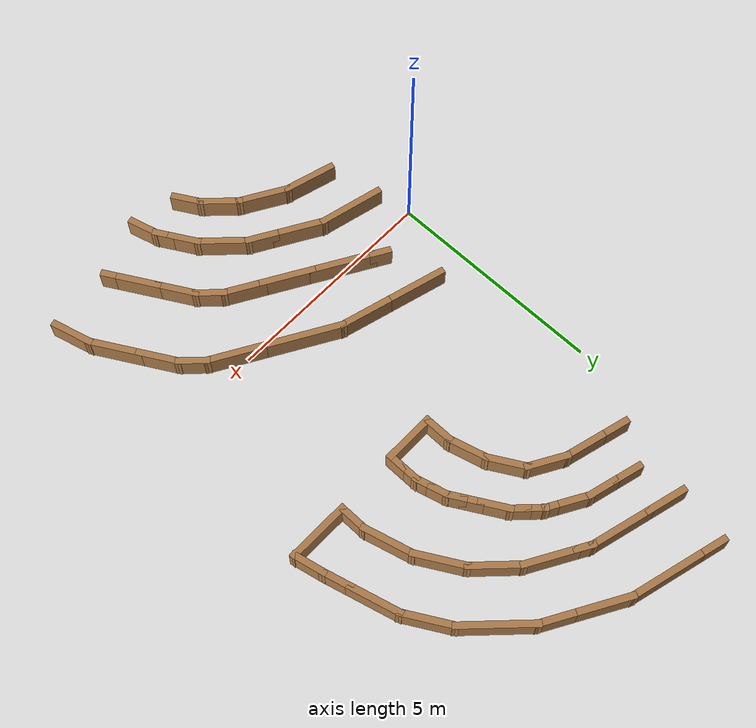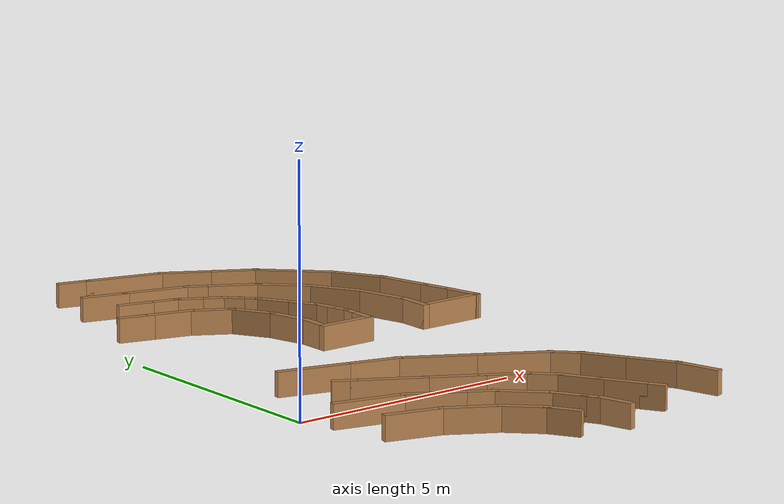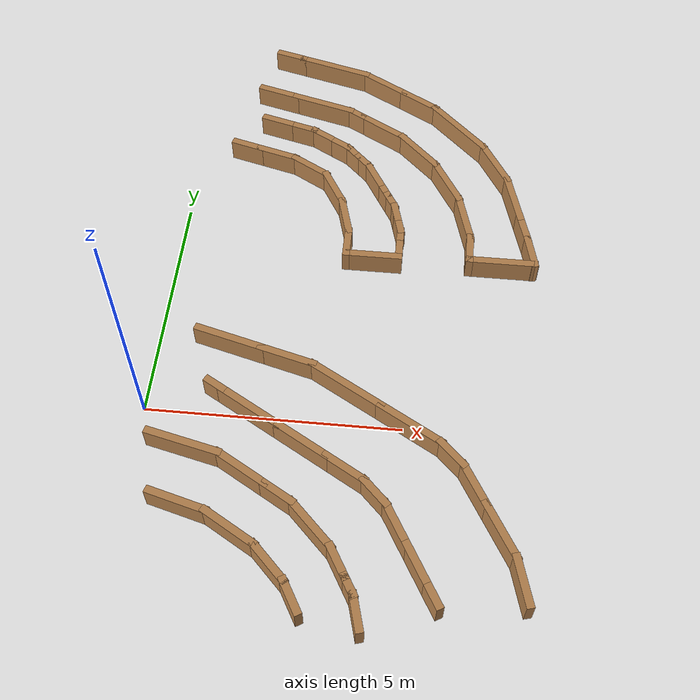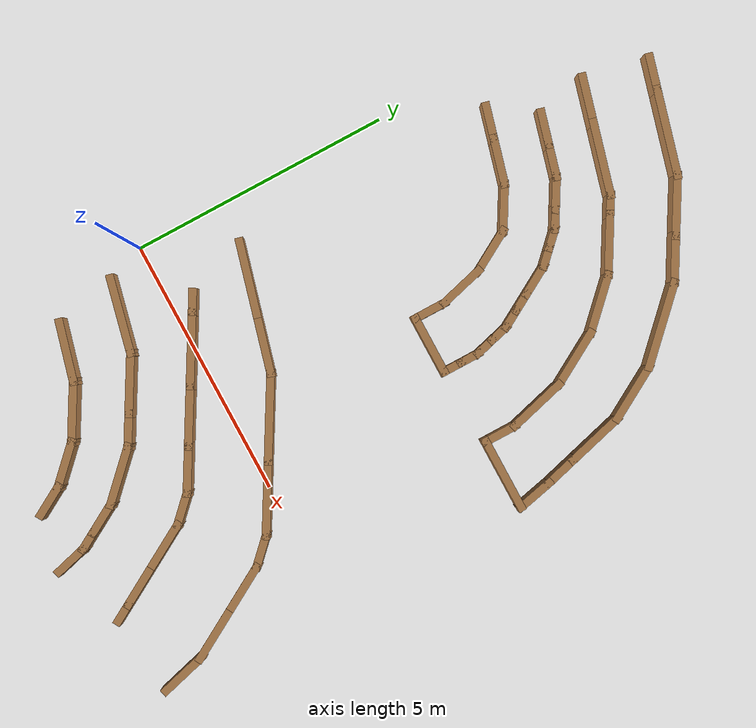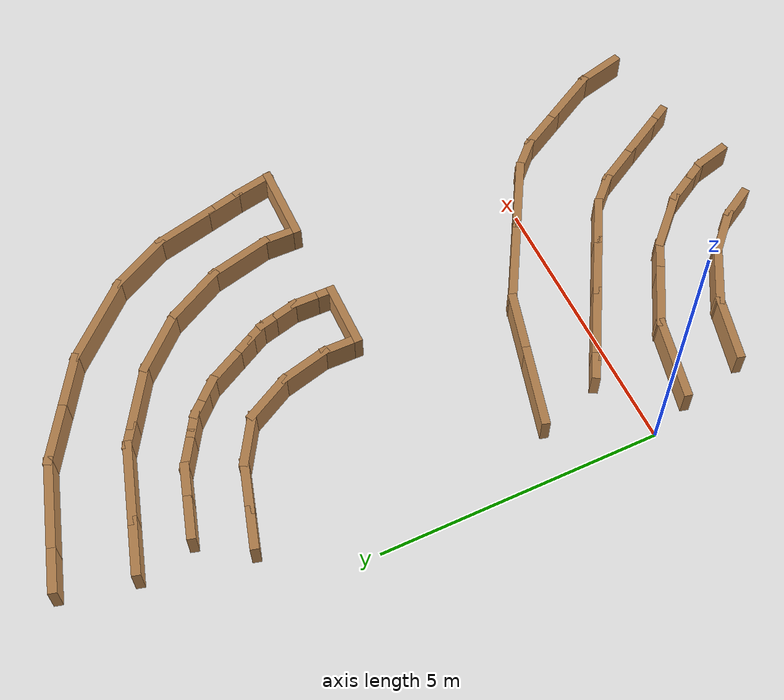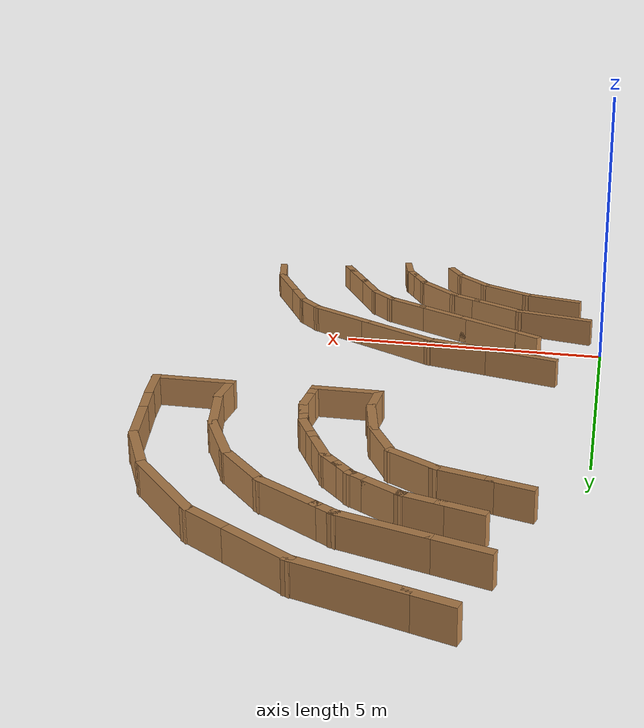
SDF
<sdf version="1.6">
 <model name="maze-S">
  <pose>0.044345 -0.028084 0 0 -0 0</pose>
  <link name="Wall_167">
   <collision name="Wall_167_Collision">
    <geometry><box><size>1.5 0.15 0.5</size></box></geometry>
    <pose>0 0 0.25 0 -0 0</pose>
   </collision>
   <visual name="Wall_167_Visual">
    <pose>0 0 0.25 0 -0 0</pose>
    <geometry><box><size>1.5 0.15 0.5</size></box></geometry>
    <material>
     <script><uri>file://media/materials/scripts/gazebo.material</uri><name>Gazebo/Wood</name></script>
     <ambient>1 1 1 1</ambient>
    </material>
    <meta><layer>0</layer></meta>
   </visual>
   <pose>6.75824 3.91414 0 0 -0 3.14159</pose>
  </link>
  <link name="Wall_168">
   <collision name="Wall_168_Collision">
    <geometry><box><size>0.75 0.15 0.5</size></box></geometry>
    <pose>0 0 0.25 0 -0 0</pose>
   </collision>
   <visual name="Wall_168_Visual">
    <pose>0 0 0.25 0 -0 0</pose>
    <geometry><box><size>0.75 0.15 0.5</size></box></geometry>
    <material>
     <script><uri>file://media/materials/scripts/gazebo.material</uri><name>Gazebo/Wood</name></script>
     <ambient>1 1 1 1</ambient>
    </material>
    <meta><layer>0</layer></meta>
   </visual>
   <pose>6.08324 4.21414 0 0 -0 1.5708</pose>
  </link>
  <link name="Wall_169">
   <collision name="Wall_169_Collision">
    <geometry><box><size>1.25 0.15 0.5</size></box></geometry>
    <pose>0 0 0.25 0 -0 0</pose>
   </collision>
   <visual name="Wall_169_Visual">
    <pose>0 0 0.25 0 -0 0</pose>
    <geometry><box><size>1.25 0.15 0.5</size></box></geometry>
    <material>
     <script><uri>file://media/materials/scripts/gazebo.material</uri><name>Gazebo/Wood</name></script>
     <ambient>1 1 1 1</ambient>
    </material>
    <meta><layer>0</layer></meta>
   </visual>
   <pose>5.94089 5.0454 0 0 -0 1.8326</pose>
  </link>
  <link name="Wall_170">
   <collision name="Wall_170_Collision">
    <geometry><box><size>1.25 0.15 0.5</size></box></geometry>
    <pose>0 0 0.25 0 -0 0</pose>
   </collision>
   <visual name="Wall_170_Visual">
    <pose>0 0 0.25 0 -0 0</pose>
    <geometry><box><size>1.25 0.15 0.5</size></box></geometry>
    <material>
     <script><uri>file://media/materials/scripts/gazebo.material</uri><name>Gazebo/Wood</name></script>
     <ambient>1 1 1 1</ambient>
    </material>
    <meta><layer>0</layer></meta>
   </visual>
   <pose>5.52354 6.05297 0 0 -0 2.0944</pose>
  </link>
  <link name="Wall_171">
   <collision name="Wall_171_Collision">
    <geometry><box><size>1.25 0.15 0.5</size></box></geometry>
    <pose>0 0 0.25 0 -0 0</pose>
   </collision>
   <visual name="Wall_171_Visual">
    <pose>0 0 0.25 0 -0 0</pose>
    <geometry><box><size>1.25 0.15 0.5</size></box></geometry>
    <material>
     <script><uri>file://media/materials/scripts/gazebo.material</uri><name>Gazebo/Wood</name></script>
     <ambient>1 1 1 1</ambient>
    </material>
    <meta><layer>0</layer></meta>
   </visual>
   <pose>4.85963 6.91819 0 0 -0 2.35619</pose>
  </link>
  <link name="Wall_172">
   <collision name="Wall_172_Collision">
    <geometry><box><size>1.25 0.15 0.5</size></box></geometry>
    <pose>0 0 0.25 0 -0 0</pose>
   </collision>
   <visual name="Wall_172_Visual">
    <pose>0 0 0.25 0 -0 0</pose>
    <geometry><box><size>1.25 0.15 0.5</size></box></geometry>
    <material>
     <script><uri>file://media/materials/scripts/gazebo.material</uri><name>Gazebo/Wood</name></script>
     <ambient>1 1 1 1</ambient>
    </material>
    <meta><layer>0</layer></meta>
   </visual>
   <pose>3.99441 7.5821 0 0 -0 2.61799</pose>
  </link>
  <link name="Wall_173">
   <collision name="Wall_173_Collision">
    <geometry><box><size>0.5 0.15 0.5</size></box></geometry>
    <pose>0 0 0.25 0 -0 0</pose>
   </collision>
   <visual name="Wall_173_Visual">
    <pose>0 0 0.25 0 -0 0</pose>
    <geometry><box><size>0.5 0.15 0.5</size></box></geometry>
    <material>
     <script><uri>file://media/materials/scripts/gazebo.material</uri><name>Gazebo/Wood</name></script>
     <ambient>1 1 1 1</ambient>
    </material>
    <meta><layer>0</layer></meta>
   </visual>
   <pose>3.36654 7.9446 0 0 -0 2.61799</pose>
  </link>
  <link name="Wall_174">
   <collision name="Wall_174_Collision">
    <geometry><box><size>1.5 0.15 0.5</size></box></geometry>
    <pose>0 0 0.25 0 -0 0</pose>
   </collision>
   <visual name="Wall_174_Visual">
    <pose>0 0 0.25 0 -0 0</pose>
    <geometry><box><size>1.5 0.15 0.5</size></box></geometry>
    <material>
     <script><uri>file://media/materials/scripts/gazebo.material</uri><name>Gazebo/Wood</name></script>
     <ambient>1 1 1 1</ambient>
    </material>
    <meta><layer>0</layer></meta>
   </visual>
   <pose>2.56299 8.2068 0 0 -0 2.87979</pose>
  </link>
  <link name="Wall_175">
   <collision name="Wall_175_Collision">
    <geometry><box><size>1 0.15 0.5</size></box></geometry>
    <pose>0 0 0.25 0 -0 0</pose>
   </collision>
   <visual name="Wall_175_Visual">
    <pose>0 0 0.25 0 -0 0</pose>
    <geometry><box><size>1 0.15 0.5</size></box></geometry>
    <material>
     <script><uri>file://media/materials/scripts/gazebo.material</uri><name>Gazebo/Wood</name></script>
     <ambient>1 1 1 1</ambient>
    </material>
    <meta><layer>0</layer></meta>
   </visual>
   <pose>1.50047 8.4915 0 0 -0 2.87979</pose>
  </link>
  <link name="Wall_196">
   <collision name="Wall_196_Collision">
    <geometry><box><size>0.75 0.15 0.5</size></box></geometry>
    <pose>0 0 0.25 0 -0 0</pose>
   </collision>
   <visual name="Wall_196_Visual">
    <pose>0 0 0.25 0 -0 0</pose>
    <geometry><box><size>0.75 0.15 0.5</size></box></geometry>
    <material>
     <script><uri>file://media/materials/scripts/gazebo.material</uri><name>Gazebo/Wood</name></script>
     <ambient>1 1 1 1</ambient>
    </material>
    <meta><layer>0</layer></meta>
   </visual>
   <pose>1.59015 7.55715 0 0 -0 -0.261799</pose>
  </link>
  <link name="Wall_197">
   <collision name="Wall_197_Collision">
    <geometry><box><size>0.75 0.15 0.5</size></box></geometry>
    <pose>0 0 0.25 0 -0 0</pose>
   </collision>
   <visual name="Wall_197_Visual">
    <pose>0 0 0.25 0 -0 0</pose>
    <geometry><box><size>0.75 0.15 0.5</size></box></geometry>
    <material>
     <script><uri>file://media/materials/scripts/gazebo.material</uri><name>Gazebo/Wood</name></script>
     <ambient>1 1 1 1</ambient>
    </material>
    <meta><layer>0</layer></meta>
   </visual>
   <pose>2.16971 7.40186 0 0 -0 -0.261799</pose>
  </link>
  <link name="Wall_198">
   <collision name="Wall_198_Collision">
    <geometry><box><size>0.75 0.15 0.5</size></box></geometry>
    <pose>0 0 0.25 0 -0 0</pose>
   </collision>
   <visual name="Wall_198_Visual">
    <pose>0 0 0.25 0 -0 0</pose>
    <geometry><box><size>0.75 0.15 0.5</size></box></geometry>
    <material>
     <script><uri>file://media/materials/scripts/gazebo.material</uri><name>Gazebo/Wood</name></script>
     <ambient>1 1 1 1</ambient>
    </material>
    <meta><layer>0</layer></meta>
   </visual>
   <pose>2.71929 7.17422 0 0 -0 -0.523599</pose>
  </link>
  <link name="Wall_199">
   <collision name="Wall_199_Collision">
    <geometry><box><size>0.5 0.15 0.5</size></box></geometry>
    <pose>0 0 0.25 0 -0 0</pose>
   </collision>
   <visual name="Wall_199_Visual">
    <pose>0 0 0.25 0 -0 0</pose>
    <geometry><box><size>0.5 0.15 0.5</size></box></geometry>
    <material>
     <script><uri>file://media/materials/scripts/gazebo.material</uri><name>Gazebo/Wood</name></script>
     <ambient>1 1 1 1</ambient>
    </material>
    <meta><layer>0</layer></meta>
   </visual>
   <pose>3.13065 6.93672 0 0 -0 -0.523599</pose>
  </link>
  <link name="Wall_200">
   <collision name="Wall_200_Collision">
    <geometry><box><size>0.5 0.15 0.5</size></box></geometry>
    <pose>0 0 0.25 0 -0 0</pose>
   </collision>
   <visual name="Wall_200_Visual">
    <pose>0 0 0.25 0 -0 0</pose>
    <geometry><box><size>0.5 0.15 0.5</size></box></geometry>
    <material>
     <script><uri>file://media/materials/scripts/gazebo.material</uri><name>Gazebo/Wood</name></script>
     <ambient>1 1 1 1</ambient>
    </material>
    <meta><layer>0</layer></meta>
   </visual>
   <pose>3.40595 6.72547 0 0 -0 -0.785398</pose>
  </link>
  <link name="Wall_201">
   <collision name="Wall_201_Collision">
    <geometry><box><size>0.5 0.15 0.5</size></box></geometry>
    <pose>0 0 0.25 0 -0 0</pose>
   </collision>
   <visual name="Wall_201_Visual">
    <pose>0 0 0.25 0 -0 0</pose>
    <geometry><box><size>0.5 0.15 0.5</size></box></geometry>
    <material>
     <script><uri>file://media/materials/scripts/gazebo.material</uri><name>Gazebo/Wood</name></script>
     <ambient>1 1 1 1</ambient>
    </material>
    <meta><layer>0</layer></meta>
   </visual>
   <pose>3.65344 6.47799 0 0 -0 -0.785398</pose>
  </link>
  <link name="Wall_202">
   <collision name="Wall_202_Collision">
    <geometry><box><size>0.75 0.15 0.5</size></box></geometry>
    <pose>0 0 0.25 0 -0 0</pose>
   </collision>
   <visual name="Wall_202_Visual">
    <pose>0 0 0.25 0 -0 0</pose>
    <geometry><box><size>0.75 0.15 0.5</size></box></geometry>
    <material>
     <script><uri>file://media/materials/scripts/gazebo.material</uri><name>Gazebo/Wood</name></script>
     <ambient>1 1 1 1</ambient>
    </material>
    <meta><layer>0</layer></meta>
   </visual>
   <pose>3.92718 6.09443 0 0 -0 -1.0472</pose>
  </link>
  <link name="Wall_203">
   <collision name="Wall_203_Collision">
    <geometry><box><size>0.5 0.15 0.5</size></box></geometry>
    <pose>0 0 0.25 0 -0 0</pose>
   </collision>
   <visual name="Wall_203_Visual">
    <pose>0 0 0.25 0 -0 0</pose>
    <geometry><box><size>0.5 0.15 0.5</size></box></geometry>
    <material>
     <script><uri>file://media/materials/scripts/gazebo.material</uri><name>Gazebo/Wood</name></script>
     <ambient>1 1 1 1</ambient>
    </material>
    <meta><layer>0</layer></meta>
   </visual>
   <pose>4.16468 5.68307 0 0 -0 -1.0472</pose>
  </link>
  <link name="Wall_204">
   <collision name="Wall_204_Collision">
    <geometry><box><size>0.5 0.15 0.5</size></box></geometry>
    <pose>0 0 0.25 0 -0 0</pose>
   </collision>
   <visual name="Wall_204_Visual">
    <pose>0 0 0.25 0 -0 0</pose>
    <geometry><box><size>0.5 0.15 0.5</size></box></geometry>
    <material>
     <script><uri>file://media/materials/scripts/gazebo.material</uri><name>Gazebo/Wood</name></script>
     <ambient>1 1 1 1</ambient>
    </material>
    <meta><layer>0</layer></meta>
   </visual>
   <pose>4.33968 5.37996 0 0 -0 -1.0472</pose>
  </link>
  <link name="Wall_205">
   <collision name="Wall_205_Collision">
    <geometry><box><size>0.5 0.15 0.5</size></box></geometry>
    <pose>0 0 0.25 0 -0 0</pose>
   </collision>
   <visual name="Wall_205_Visual">
    <pose>0 0 0.25 0 -0 0</pose>
    <geometry><box><size>0.5 0.15 0.5</size></box></geometry>
    <material>
     <script><uri>file://media/materials/scripts/gazebo.material</uri><name>Gazebo/Wood</name></script>
     <ambient>1 1 1 1</ambient>
    </material>
    <meta><layer>0</layer></meta>
   </visual>
   <pose>4.47248 5.05937 0 0 -0 -1.309</pose>
  </link>
  <link name="Wall_206">
   <collision name="Wall_206_Collision">
    <geometry><box><size>0.5 0.15 0.5</size></box></geometry>
    <pose>0 0 0.25 0 -0 0</pose>
   </collision>
   <visual name="Wall_206_Visual">
    <pose>0 0 0.25 0 -0 0</pose>
    <geometry><box><size>0.5 0.15 0.5</size></box></geometry>
    <material>
     <script><uri>file://media/materials/scripts/gazebo.material</uri><name>Gazebo/Wood</name></script>
     <ambient>1 1 1 1</ambient>
    </material>
    <meta><layer>0</layer></meta>
   </visual>
   <pose>4.56306 4.7213 0 0 -0 -1.309</pose>
  </link>
  <link name="Wall_207">
   <collision name="Wall_207_Collision">
    <geometry><box><size>0.5 0.15 0.5</size></box></geometry>
    <pose>0 0 0.25 0 -0 0</pose>
   </collision>
   <visual name="Wall_207_Visual">
    <pose>0 0 0.25 0 -0 0</pose>
    <geometry><box><size>0.5 0.15 0.5</size></box></geometry>
    <material>
     <script><uri>file://media/materials/scripts/gazebo.material</uri><name>Gazebo/Wood</name></script>
     <ambient>1 1 1 1</ambient>
    </material>
    <meta><layer>0</layer></meta>
   </visual>
   <pose>4.60836 4.37726 0 0 -0 -1.5708</pose>
  </link>
  <link name="Wall_208">
   <collision name="Wall_208_Collision">
    <geometry><box><size>0.5 0.15 0.5</size></box></geometry>
    <pose>0 0 0.25 0 -0 0</pose>
   </collision>
   <visual name="Wall_208_Visual">
    <pose>0 0 0.25 0 -0 0</pose>
    <geometry><box><size>0.5 0.15 0.5</size></box></geometry>
    <material>
     <script><uri>file://media/materials/scripts/gazebo.material</uri><name>Gazebo/Wood</name></script>
     <ambient>1 1 1 1</ambient>
    </material>
    <meta><layer>0</layer></meta>
   </visual>
   <pose>4.60836 4.02726 0 0 -0 -1.5708</pose>
  </link>
  <link name="Wall_209">
   <collision name="Wall_209_Collision">
    <geometry><box><size>1.25 0.15 0.5</size></box></geometry>
    <pose>0 0 0.25 0 -0 0</pose>
   </collision>
   <visual name="Wall_209_Visual">
    <pose>0 0 0.25 0 -0 0</pose>
    <geometry><box><size>1.25 0.15 0.5</size></box></geometry>
    <material>
     <script><uri>file://media/materials/scripts/gazebo.material</uri><name>Gazebo/Wood</name></script>
     <ambient>1 1 1 1</ambient>
    </material>
    <meta><layer>0</layer></meta>
   </visual>
   <pose>4.05835 3.85226 0 0 -0 3.14159</pose>
  </link>
  <link name="Wall_210">
   <collision name="Wall_210_Collision">
    <geometry><box><size>0.75 0.15 0.5</size></box></geometry>
    <pose>0 0 0.25 0 -0 0</pose>
   </collision>
   <visual name="Wall_210_Visual">
    <pose>0 0 0.25 0 -0 0</pose>
    <geometry><box><size>0.75 0.15 0.5</size></box></geometry>
    <material>
     <script><uri>file://media/materials/scripts/gazebo.material</uri><name>Gazebo/Wood</name></script>
     <ambient>1 1 1 1</ambient>
    </material>
    <meta><layer>0</layer></meta>
   </visual>
   <pose>3.50836 4.15226 0 0 -0 1.5708</pose>
  </link>
  <link name="Wall_211">
   <collision name="Wall_211_Collision">
    <geometry><box><size>1 0.15 0.5</size></box></geometry>
    <pose>0 0 0.25 0 -0 0</pose>
   </collision>
   <visual name="Wall_211_Visual">
    <pose>0 0 0.25 0 -0 0</pose>
    <geometry><box><size>1 0.15 0.5</size></box></geometry>
    <material>
     <script><uri>file://media/materials/scripts/gazebo.material</uri><name>Gazebo/Wood</name></script>
     <ambient>1 1 1 1</ambient>
    </material>
    <meta><layer>0</layer></meta>
   </visual>
   <pose>3.39836 4.86278 0 0 -0 1.8326</pose>
  </link>
  <link name="Wall_212">
   <collision name="Wall_212_Collision">
    <geometry><box><size>1 0.15 0.5</size></box></geometry>
    <pose>0 0 0.25 0 -0 0</pose>
   </collision>
   <visual name="Wall_212_Visual">
    <pose>0 0 0.25 0 -0 0</pose>
    <geometry><box><size>1 0.15 0.5</size></box></geometry>
    <material>
     <script><uri>file://media/materials/scripts/gazebo.material</uri><name>Gazebo/Wood</name></script>
     <ambient>1 1 1 1</ambient>
    </material>
    <meta><layer>0</layer></meta>
   </visual>
   <pose>3.07586 5.64136 0 0 -0 2.0944</pose>
  </link>
  <link name="Wall_213">
   <collision name="Wall_213_Collision">
    <geometry><box><size>1 0.15 0.5</size></box></geometry>
    <pose>0 0 0.25 0 -0 0</pose>
   </collision>
   <visual name="Wall_213_Visual">
    <pose>0 0 0.25 0 -0 0</pose>
    <geometry><box><size>1 0.15 0.5</size></box></geometry>
    <material>
     <script><uri>file://media/materials/scripts/gazebo.material</uri><name>Gazebo/Wood</name></script>
     <ambient>1 1 1 1</ambient>
    </material>
    <meta><layer>0</layer></meta>
   </visual>
   <pose>2.4953 6.22192 0 0 -0 2.61799</pose>
  </link>
  <link name="Wall_214">
   <collision name="Wall_214_Collision">
    <geometry><box><size>1 0.15 0.5</size></box></geometry>
    <pose>0 0 0.25 0 -0 0</pose>
   </collision>
   <visual name="Wall_214_Visual">
    <pose>0 0 0.25 0 -0 0</pose>
    <geometry><box><size>1 0.15 0.5</size></box></geometry>
    <material>
     <script><uri>file://media/materials/scripts/gazebo.material</uri><name>Gazebo/Wood</name></script>
     <ambient>1 1 1 1</ambient>
    </material>
    <meta><layer>0</layer></meta>
   </visual>
   <pose>1.71672 6.54442 0 0 -0 2.87979</pose>
  </link>
  <link name="Wall_215">
   <collision name="Wall_215_Collision">
    <geometry><box><size>0.75 0.15 0.5</size></box></geometry>
    <pose>0 0 0.25 0 -0 0</pose>
   </collision>
   <visual name="Wall_215_Visual">
    <pose>0 0 0.25 0 -0 0</pose>
    <geometry><box><size>0.75 0.15 0.5</size></box></geometry>
    <material>
     <script><uri>file://media/materials/scripts/gazebo.material</uri><name>Gazebo/Wood</name></script>
     <ambient>1 1 1 1</ambient>
    </material>
    <meta><layer>0</layer></meta>
   </visual>
   <pose>1.01642 6.73206 0 0 -0 2.87979</pose>
  </link>
  <link name="Wall_229">
   <collision name="Wall_229_Collision">
    <geometry><box><size>1.5 0.15 0.5</size></box></geometry>
    <pose>0 0 0.25 0 -0 0</pose>
   </collision>
   <visual name="Wall_229_Visual">
    <pose>0 0 0.25 0 -0 0</pose>
    <geometry><box><size>1.5 0.15 0.5</size></box></geometry>
    <material>
     <script><uri>file://media/materials/scripts/gazebo.material</uri><name>Gazebo/Wood</name></script>
     <ambient>1 1 1 1</ambient>
    </material>
    <meta><layer>0</layer></meta>
   </visual>
   <pose>1.41767 1.52974 0 0 -0 -0.261799</pose>
  </link>
  <link name="Wall_230">
   <collision name="Wall_230_Collision">
    <geometry><box><size>1.25 0.15 0.5</size></box></geometry>
    <pose>0 0 0.25 0 -0 0</pose>
   </collision>
   <visual name="Wall_230_Visual">
    <pose>0 0 0.25 0 -0 0</pose>
    <geometry><box><size>1.25 0.15 0.5</size></box></geometry>
    <material>
     <script><uri>file://media/materials/scripts/gazebo.material</uri><name>Gazebo/Wood</name></script>
     <ambient>1 1 1 1</ambient>
    </material>
    <meta><layer>0</layer></meta>
   </visual>
   <pose>2.60093 1.21269 0 0 -0 -0.261799</pose>
  </link>
  <link name="Wall_231">
   <collision name="Wall_231_Collision">
    <geometry><box><size>1.75 0.15 0.5</size></box></geometry>
    <pose>0 0 0.25 0 -0 0</pose>
   </collision>
   <visual name="Wall_231_Visual">
    <pose>0 0 0.25 0 -0 0</pose>
    <geometry><box><size>1.75 0.15 0.5</size></box></geometry>
    <material>
     <script><uri>file://media/materials/scripts/gazebo.material</uri><name>Gazebo/Wood</name></script>
     <ambient>1 1 1 1</ambient>
    </material>
    <meta><layer>0</layer></meta>
   </visual>
   <pose>3.82501 0.670336 0 0 -0 -0.523599</pose>
  </link>
  <link name="Wall_232">
   <collision name="Wall_232_Collision">
    <geometry><box><size>1.5 0.15 0.5</size></box></geometry>
    <pose>0 0 0.25 0 -0 0</pose>
   </collision>
   <visual name="Wall_232_Visual">
    <pose>0 0 0.25 0 -0 0</pose>
    <geometry><box><size>1.5 0.15 0.5</size></box></geometry>
    <material>
     <script><uri>file://media/materials/scripts/gazebo.material</uri><name>Gazebo/Wood</name></script>
     <ambient>1 1 1 1</ambient>
    </material>
    <meta><layer>0</layer></meta>
   </visual>
   <pose>5.10239 -0.067164 0 0 -0 -0.523599</pose>
  </link>
  <link name="Wall_233">
   <collision name="Wall_233_Collision">
    <geometry><box><size>0.75 0.15 0.5</size></box></geometry>
    <pose>0 0 0.25 0 -0 0</pose>
   </collision>
   <visual name="Wall_233_Visual">
    <pose>0 0 0.25 0 -0 0</pose>
    <geometry><box><size>0.75 0.15 0.5</size></box></geometry>
    <material>
     <script><uri>file://media/materials/scripts/gazebo.material</uri><name>Gazebo/Wood</name></script>
     <ambient>1 1 1 1</ambient>
    </material>
    <meta><layer>0</layer></meta>
   </visual>
   <pose>5.89909 -0.616796 0 0 -0 -0.785398</pose>
  </link>
  <link name="Wall_234">
   <collision name="Wall_234_Collision">
    <geometry><box><size>1 0.15 0.5</size></box></geometry>
    <pose>0 0 0.25 0 -0 0</pose>
   </collision>
   <visual name="Wall_234_Visual">
    <pose>0 0 0.25 0 -0 0</pose>
    <geometry><box><size>1 0.15 0.5</size></box></geometry>
    <material>
     <script><uri>file://media/materials/scripts/gazebo.material</uri><name>Gazebo/Wood</name></script>
     <ambient>1 1 1 1</ambient>
    </material>
    <meta><layer>0</layer></meta>
   </visual>
   <pose>6.32373 -1.19699 0 0 -0 -1.0472</pose>
  </link>
  <link name="Wall_235">
   <collision name="Wall_235_Collision">
    <geometry><box><size>1.25 0.15 0.5</size></box></geometry>
    <pose>0 0 0.25 0 -0 0</pose>
   </collision>
   <visual name="Wall_235_Visual">
    <pose>0 0 0.25 0 -0 0</pose>
    <geometry><box><size>1.25 0.15 0.5</size></box></geometry>
    <material>
     <script><uri>file://media/materials/scripts/gazebo.material</uri><name>Gazebo/Wood</name></script>
     <ambient>1 1 1 1</ambient>
    </material>
    <meta><layer>0</layer></meta>
   </visual>
   <pose>6.81123 -2.04136 0 0 -0 -1.0472</pose>
  </link>
  <link name="Wall_236">
   <collision name="Wall_236_Collision">
    <geometry><box><size>1 0.15 0.5</size></box></geometry>
    <pose>0 0 0.25 0 -0 0</pose>
   </collision>
   <visual name="Wall_236_Visual">
    <pose>0 0 0.25 0 -0 0</pose>
    <geometry><box><size>1 0.15 0.5</size></box></geometry>
    <material>
     <script><uri>file://media/materials/scripts/gazebo.material</uri><name>Gazebo/Wood</name></script>
     <ambient>1 1 1 1</ambient>
    </material>
    <meta><layer>0</layer></meta>
   </visual>
   <pose>7.19622 -2.9282 0 0 -0 -1.309</pose>
  </link>
  <link name="Wall_309">
   <collision name="Wall_309_Collision">
    <geometry><box><size>0.75 0.15 0.5</size></box></geometry>
    <pose>0 0 0.25 0 -0 0</pose>
   </collision>
   <visual name="Wall_309_Visual">
    <pose>0 0 0.25 0 -0 0</pose>
    <geometry><box><size>0.75 0.15 0.5</size></box></geometry>
    <material>
     <script><uri>file://media/materials/scripts/gazebo.material</uri><name>Gazebo/Wood</name></script>
     <ambient>1 1 1 1</ambient>
    </material>
    <meta><layer>0</layer></meta>
   </visual>
   <pose>3.26633 -3.5613 0 0 -0 2.0944</pose>
  </link>
  <link name="Wall_310">
   <collision name="Wall_310_Collision">
    <geometry><box><size>1 0.15 0.5</size></box></geometry>
    <pose>0 0 0.25 0 -0 0</pose>
   </collision>
   <visual name="Wall_310_Visual">
    <pose>0 0 0.25 0 -0 0</pose>
    <geometry><box><size>1 0.15 0.5</size></box></geometry>
    <material>
     <script><uri>file://media/materials/scripts/gazebo.material</uri><name>Gazebo/Wood</name></script>
     <ambient>1 1 1 1</ambient>
    </material>
    <meta><layer>0</layer></meta>
   </visual>
   <pose>2.8158 -3.00097 0 0 -0 2.35619</pose>
  </link>
  <link name="Wall_311">
   <collision name="Wall_311_Collision">
    <geometry><box><size>1.25 0.15 0.5</size></box></geometry>
    <pose>0 0 0.25 0 -0 0</pose>
   </collision>
   <visual name="Wall_311_Visual">
    <pose>0 0 0.25 0 -0 0</pose>
    <geometry><box><size>1.25 0.15 0.5</size></box></geometry>
    <material>
     <script><uri>file://media/materials/scripts/gazebo.material</uri><name>Gazebo/Wood</name></script>
     <ambient>1 1 1 1</ambient>
    </material>
    <meta><layer>0</layer></meta>
   </visual>
   <pose>2.03897 -2.42545 0 0 -0 2.61799</pose>
  </link>
  <link name="Wall_312">
   <collision name="Wall_312_Collision">
    <geometry><box><size>1.25 0.15 0.5</size></box></geometry>
    <pose>0 0 0.25 0 -0 0</pose>
   </collision>
   <visual name="Wall_312_Visual">
    <pose>0 0 0.25 0 -0 0</pose>
    <geometry><box><size>1.25 0.15 0.5</size></box></geometry>
    <material>
     <script><uri>file://media/materials/scripts/gazebo.material</uri><name>Gazebo/Wood</name></script>
     <ambient>1 1 1 1</ambient>
    </material>
    <meta><layer>0</layer></meta>
   </visual>
   <pose>1.0314 -2.0081 0 0 -0 2.87979</pose>
  </link>
  <link name="Wall_330">
   <collision name="Wall_330_Collision">
    <geometry><box><size>0.75 0.15 0.5</size></box></geometry>
    <pose>0 0 0.25 0 -0 0</pose>
   </collision>
   <visual name="Wall_330_Visual">
    <pose>0 0 0.25 0 -0 0</pose>
    <geometry><box><size>0.75 0.15 0.5</size></box></geometry>
    <material>
     <script><uri>file://media/materials/scripts/gazebo.material</uri><name>Gazebo/Wood</name></script>
     <ambient>1 1 1 1</ambient>
    </material>
    <meta><layer>0</layer></meta>
   </visual>
   <pose>1.64141 9.76238 0 0 -0 -0.261799</pose>
  </link>
  <link name="Wall_331">
   <collision name="Wall_331_Collision">
    <geometry><box><size>1.75 0.15 0.5</size></box></geometry>
    <pose>0 0 0.25 0 -0 0</pose>
   </collision>
   <visual name="Wall_331_Visual">
    <pose>0 0 0.25 0 -0 0</pose>
    <geometry><box><size>1.75 0.15 0.5</size></box></geometry>
    <material>
     <script><uri>file://media/materials/scripts/gazebo.material</uri><name>Gazebo/Wood</name></script>
     <ambient>1 1 1 1</ambient>
    </material>
    <meta><layer>0</layer></meta>
   </visual>
   <pose>2.70393 9.47768 0 0 -0 -0.261799</pose>
  </link>
  <link name="Wall_332">
   <collision name="Wall_332_Collision">
    <geometry><box><size>1.25 0.15 0.5</size></box></geometry>
    <pose>0 0 0.25 0 -0 0</pose>
   </collision>
   <visual name="Wall_332_Visual">
    <pose>0 0 0.25 0 -0 0</pose>
    <geometry><box><size>1.25 0.15 0.5</size></box></geometry>
    <material>
     <script><uri>file://media/materials/scripts/gazebo.material</uri><name>Gazebo/Wood</name></script>
     <ambient>1 1 1 1</ambient>
    </material>
    <meta><layer>0</layer></meta>
   </visual>
   <pose>3.95298 8.99562 0 0 -0 -0.523599</pose>
  </link>
  <link name="Wall_333">
   <collision name="Wall_333_Collision">
    <geometry><box><size>1 0.15 0.5</size></box></geometry>
    <pose>0 0 0.25 0 -0 0</pose>
   </collision>
   <visual name="Wall_333_Visual">
    <pose>0 0 0.25 0 -0 0</pose>
    <geometry><box><size>1 0.15 0.5</size></box></geometry>
    <material>
     <script><uri>file://media/materials/scripts/gazebo.material</uri><name>Gazebo/Wood</name></script>
     <ambient>1 1 1 1</ambient>
    </material>
    <meta><layer>0</layer></meta>
   </visual>
   <pose>4.79735 8.50812 0 0 -0 -0.523599</pose>
  </link>
  <link name="Wall_334">
   <collision name="Wall_334_Collision">
    <geometry><box><size>1.75 0.15 0.5</size></box></geometry>
    <pose>0 0 0.25 0 -0 0</pose>
   </collision>
   <visual name="Wall_334_Visual">
    <pose>0 0 0.25 0 -0 0</pose>
    <geometry><box><size>1.75 0.15 0.5</size></box></geometry>
    <material>
     <script><uri>file://media/materials/scripts/gazebo.material</uri><name>Gazebo/Wood</name></script>
     <ambient>1 1 1 1</ambient>
    </material>
    <meta><layer>0</layer></meta>
   </visual>
   <pose>5.7311 7.72994 0 0 -0 -0.785398</pose>
  </link>
  <link name="Wall_335">
   <collision name="Wall_335_Collision">
    <geometry><box><size>1.25 0.15 0.5</size></box></geometry>
    <pose>0 0 0.25 0 -0 0</pose>
   </collision>
   <visual name="Wall_335_Visual">
    <pose>0 0 0.25 0 -0 0</pose>
    <geometry><box><size>1.25 0.15 0.5</size></box></geometry>
    <material>
     <script><uri>file://media/materials/scripts/gazebo.material</uri><name>Gazebo/Wood</name></script>
     <ambient>1 1 1 1</ambient>
    </material>
    <meta><layer>0</layer></meta>
   </visual>
   <pose>6.57179 6.68794 0 0 -0 -1.0472</pose>
  </link>
  <link name="Wall_336">
   <collision name="Wall_336_Collision">
    <geometry><box><size>1.25 0.15 0.5</size></box></geometry>
    <pose>0 0 0.25 0 -0 0</pose>
   </collision>
   <visual name="Wall_336_Visual">
    <pose>0 0 0.25 0 -0 0</pose>
    <geometry><box><size>1.25 0.15 0.5</size></box></geometry>
    <material>
     <script><uri>file://media/materials/scripts/gazebo.material</uri><name>Gazebo/Wood</name></script>
     <ambient>1 1 1 1</ambient>
    </material>
    <meta><layer>0</layer></meta>
   </visual>
   <pose>6.98914 5.68037 0 0 -0 -1.309</pose>
  </link>
  <link name="Wall_337">
   <collision name="Wall_337_Collision">
    <geometry><box><size>0.75 0.15 0.5</size></box></geometry>
    <pose>0 0 0.25 0 -0 0</pose>
   </collision>
   <visual name="Wall_337_Visual">
    <pose>0 0 0.25 0 -0 0</pose>
    <geometry><box><size>0.75 0.15 0.5</size></box></geometry>
    <material>
     <script><uri>file://media/materials/scripts/gazebo.material</uri><name>Gazebo/Wood</name></script>
     <ambient>1 1 1 1</ambient>
    </material>
    <meta><layer>0</layer></meta>
   </visual>
   <pose>7.20913 4.85933 0 0 -0 -1.309</pose>
  </link>
  <link name="Wall_338">
   <collision name="Wall_338_Collision">
    <geometry><box><size>0.821579 0.15 0.5</size></box></geometry>
    <pose>0 0 0.25 0 -0 0</pose>
   </collision>
   <visual name="Wall_338_Visual">
    <pose>0 0 0.25 0 -0 0</pose>
    <geometry><box><size>0.821579 0.15 0.5</size></box></geometry>
    <material>
     <script><uri>file://media/materials/scripts/gazebo.material</uri><name>Gazebo/Wood</name></script>
     <ambient>1 1 1 1</ambient>
    </material>
    <meta><layer>0</layer></meta>
   </visual>
   <pose>7.36001 4.24184 0 0 -0 -1.35094</pose>
  </link>
  <link name="Wall_347">
   <collision name="Wall_347_Collision">
    <geometry><box><size>1.55132 0.15 0.5</size></box></geometry>
    <pose>0 0 0.25 0 -0 0</pose>
   </collision>
   <visual name="Wall_347_Visual">
    <pose>0 0 0.25 0 -0 0</pose>
    <geometry><box><size>1.55132 0.15 0.5</size></box></geometry>
    <material>
     <script><uri>file://media/materials/scripts/gazebo.material</uri><name>Gazebo/Wood</name></script>
     <ambient>1 1 1 1</ambient>
    </material>
    <meta><layer>0</layer></meta>
   </visual>
   <pose>0.920237 -0.832903 0 0 -0 -0.229773</pose>
  </link>
  <link name="Wall_348">
   <collision name="Wall_348_Collision">
    <geometry><box><size>1.25 0.15 0.5</size></box></geometry>
    <pose>0 0 0.25 0 -0 0</pose>
   </collision>
   <visual name="Wall_348_Visual">
    <pose>0 0 0.25 0 -0 0</pose>
    <geometry><box><size>1.25 0.15 0.5</size></box></geometry>
    <material>
     <script><uri>file://media/materials/scripts/gazebo.material</uri><name>Gazebo/Wood</name></script>
     <ambient>1 1 1 1</ambient>
    </material>
    <meta><layer>0</layer></meta>
   </visual>
   <pose>2.0788 -1.26748 0 0 -0 -0.523599</pose>
  </link>
  <link name="Wall_349">
   <collision name="Wall_349_Collision">
    <geometry><box><size>0.75 0.15 0.5</size></box></geometry>
    <pose>0 0 0.25 0 -0 0</pose>
   </collision>
   <visual name="Wall_349_Visual">
    <pose>0 0 0.25 0 -0 0</pose>
    <geometry><box><size>0.75 0.15 0.5</size></box></geometry>
    <material>
     <script><uri>file://media/materials/scripts/gazebo.material</uri><name>Gazebo/Wood</name></script>
     <ambient>1 1 1 1</ambient>
    </material>
    <meta><layer>0</layer></meta>
   </visual>
   <pose>2.81492 -1.69248 0 0 -0 -0.523599</pose>
  </link>
  <link name="Wall_350">
   <collision name="Wall_350_Collision">
    <geometry><box><size>1.25 0.15 0.5</size></box></geometry>
    <pose>0 0 0.25 0 -0 0</pose>
   </collision>
   <visual name="Wall_350_Visual">
    <pose>0 0 0.25 0 -0 0</pose>
    <geometry><box><size>1.25 0.15 0.5</size></box></geometry>
    <material>
     <script><uri>file://media/materials/scripts/gazebo.material</uri><name>Gazebo/Wood</name></script>
     <ambient>1 1 1 1</ambient>
    </material>
    <meta><layer>0</layer></meta>
   </visual>
   <pose>3.46363 -2.23139 0 0 -0 -0.785398</pose>
  </link>
  <link name="Wall_351">
   <collision name="Wall_351_Collision">
    <geometry><box><size>0.75 0.15 0.5</size></box></geometry>
    <pose>0 0 0.25 0 -0 0</pose>
   </collision>
   <visual name="Wall_351_Visual">
    <pose>0 0 0.25 0 -0 0</pose>
    <geometry><box><size>0.75 0.15 0.5</size></box></geometry>
    <material>
     <script><uri>file://media/materials/scripts/gazebo.material</uri><name>Gazebo/Wood</name></script>
     <ambient>1 1 1 1</ambient>
    </material>
    <meta><layer>0</layer></meta>
   </visual>
   <pose>4.00254 -2.88011 0 0 -0 -1.0472</pose>
  </link>
  <link name="Wall_352">
   <collision name="Wall_352_Collision">
    <geometry><box><size>0.5 0.15 0.5</size></box></geometry>
    <pose>0 0 0.25 0 -0 0</pose>
   </collision>
   <visual name="Wall_352_Visual">
    <pose>0 0 0.25 0 -0 0</pose>
    <geometry><box><size>0.5 0.15 0.5</size></box></geometry>
    <material>
     <script><uri>file://media/materials/scripts/gazebo.material</uri><name>Gazebo/Wood</name></script>
     <ambient>1 1 1 1</ambient>
    </material>
    <meta><layer>0</layer></meta>
   </visual>
   <pose>4.24004 -3.29147 0 0 -0 -1.0472</pose>
  </link>
  <link name="Wall_353">
   <collision name="Wall_353_Collision">
    <geometry><box><size>0.75 0.15 0.5</size></box></geometry>
    <pose>0 0 0.25 0 -0 0</pose>
   </collision>
   <visual name="Wall_353_Visual">
    <pose>0 0 0.25 0 -0 0</pose>
    <geometry><box><size>0.75 0.15 0.5</size></box></geometry>
    <material>
     <script><uri>file://media/materials/scripts/gazebo.material</uri><name>Gazebo/Wood</name></script>
     <ambient>1 1 1 1</ambient>
    </material>
    <meta><layer>0</layer></meta>
   </visual>
   <pose>4.40519 -3.7328 0 0 -0 -1.309</pose>
  </link>
  <link name="Wall_362">
   <collision name="Wall_362_Collision">
    <geometry><box><size>0.5 0.15 0.5</size></box></geometry>
    <pose>0 0 0.25 0 -0 0</pose>
   </collision>
   <visual name="Wall_362_Visual">
    <pose>0 0 0.25 0 -0 0</pose>
    <geometry><box><size>0.5 0.15 0.5</size></box></geometry>
    <material>
     <script><uri>file://media/materials/scripts/gazebo.material</uri><name>Gazebo/Wood</name></script>
     <ambient>1 1 1 1</ambient>
    </material>
    <meta><layer>0</layer></meta>
   </visual>
   <pose>1.32 0.436346 0 0 -0 -0.523599</pose>
  </link>
  <link name="Wall_363">
   <collision name="Wall_363_Collision">
    <geometry><box><size>1.5 0.15 0.5</size></box></geometry>
    <pose>0 0 0.25 0 -0 0</pose>
   </collision>
   <visual name="Wall_363_Visual">
    <pose>0 0 0.25 0 -0 0</pose>
    <geometry><box><size>1.5 0.15 0.5</size></box></geometry>
    <material>
     <script><uri>file://media/materials/scripts/gazebo.material</uri><name>Gazebo/Wood</name></script>
     <ambient>1 1 1 1</ambient>
    </material>
    <meta><layer>0</layer></meta>
   </visual>
   <pose>2.05612 0.011346 0 0 -0 -0.523599</pose>
  </link>
  <link name="Wall_364">
   <collision name="Wall_364_Collision">
    <geometry><box><size>1.25 0.15 0.5</size></box></geometry>
    <pose>0 0 0.25 0 -0 0</pose>
   </collision>
   <visual name="Wall_364_Visual">
    <pose>0 0 0.25 0 -0 0</pose>
    <geometry><box><size>1.25 0.15 0.5</size></box></geometry>
    <material>
     <script><uri>file://media/materials/scripts/gazebo.material</uri><name>Gazebo/Wood</name></script>
     <ambient>1 1 1 1</ambient>
    </material>
    <meta><layer>0</layer></meta>
   </visual>
   <pose>3.117 -0.601154 0 0 -0 -0.523599</pose>
  </link>
  <link name="Wall_365">
   <collision name="Wall_365_Collision">
    <geometry><box><size>1 0.15 0.5</size></box></geometry>
    <pose>0 0 0.25 0 -0 0</pose>
   </collision>
   <visual name="Wall_365_Visual">
    <pose>0 0 0.25 0 -0 0</pose>
    <geometry><box><size>1 0.15 0.5</size></box></geometry>
    <material>
     <script><uri>file://media/materials/scripts/gazebo.material</uri><name>Gazebo/Wood</name></script>
     <ambient>1 1 1 1</ambient>
    </material>
    <meta><layer>0</layer></meta>
   </visual>
   <pose>3.96138 -1.08865 0 0 -0 -0.523599</pose>
  </link>
  <link name="Wall_366">
   <collision name="Wall_366_Collision">
    <geometry><box><size>0.75 0.15 0.5</size></box></geometry>
    <pose>0 0 0.25 0 -0 0</pose>
   </collision>
   <visual name="Wall_366_Visual">
    <pose>0 0 0.25 0 -0 0</pose>
    <geometry><box><size>0.75 0.15 0.5</size></box></geometry>
    <material>
     <script><uri>file://media/materials/scripts/gazebo.material</uri><name>Gazebo/Wood</name></script>
     <ambient>1 1 1 1</ambient>
    </material>
    <meta><layer>0</layer></meta>
   </visual>
   <pose>4.54157 -1.51329 0 0 -0 -0.785398</pose>
  </link>
  <link name="Wall_367">
   <collision name="Wall_367_Collision">
    <geometry><box><size>1 0.15 0.5</size></box></geometry>
    <pose>0 0 0.25 0 -0 0</pose>
   </collision>
   <visual name="Wall_367_Visual">
    <pose>0 0 0.25 0 -0 0</pose>
    <geometry><box><size>1 0.15 0.5</size></box></geometry>
    <material>
     <script><uri>file://media/materials/scripts/gazebo.material</uri><name>Gazebo/Wood</name></script>
     <ambient>1 1 1 1</ambient>
    </material>
    <meta><layer>0</layer></meta>
   </visual>
   <pose>4.9662 -2.09348 0 0 -0 -1.0472</pose>
  </link>
  <link name="Wall_368">
   <collision name="Wall_368_Collision">
    <geometry><box><size>1 0.15 0.5</size></box></geometry>
    <pose>0 0 0.25 0 -0 0</pose>
   </collision>
   <visual name="Wall_368_Visual">
    <pose>0 0 0.25 0 -0 0</pose>
    <geometry><box><size>1 0.15 0.5</size></box></geometry>
    <material>
     <script><uri>file://media/materials/scripts/gazebo.material</uri><name>Gazebo/Wood</name></script>
     <ambient>1 1 1 1</ambient>
    </material>
    <meta><layer>0</layer></meta>
   </visual>
   <pose>5.3912 -2.8296 0 0 -0 -1.0472</pose>
  </link>
  <link name="Wall_369">
   <collision name="Wall_369_Collision">
    <geometry><box><size>0.5 0.15 0.5</size></box></geometry>
    <pose>0 0 0.25 0 -0 0</pose>
   </collision>
   <visual name="Wall_369_Visual">
    <pose>0 0 0.25 0 -0 0</pose>
    <geometry><box><size>0.5 0.15 0.5</size></box></geometry>
    <material>
     <script><uri>file://media/materials/scripts/gazebo.material</uri><name>Gazebo/Wood</name></script>
     <ambient>1 1 1 1</ambient>
    </material>
    <meta><layer>0</layer></meta>
   </visual>
   <pose>5.6912 -3.34922 0 0 -0 -1.0472</pose>
  </link>
  <static>1</static>
 </model>
</sdf>
